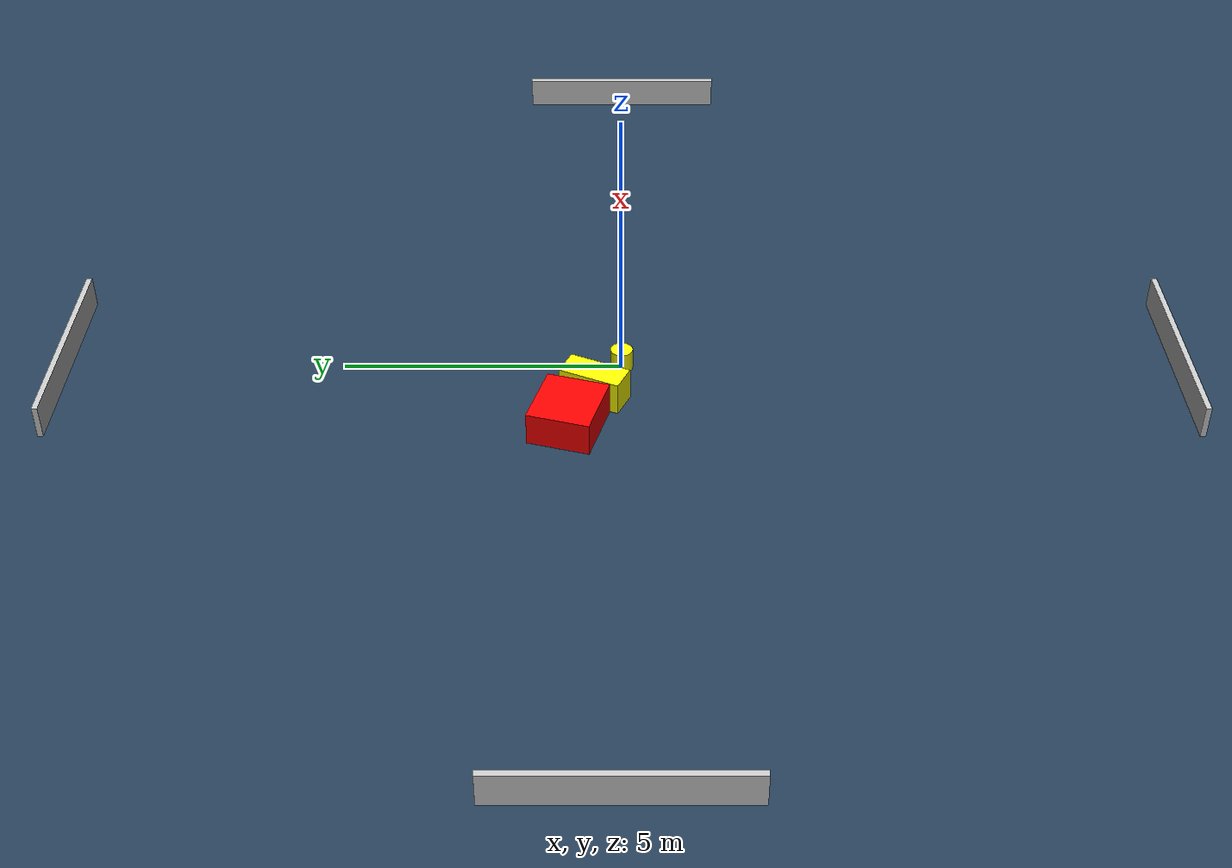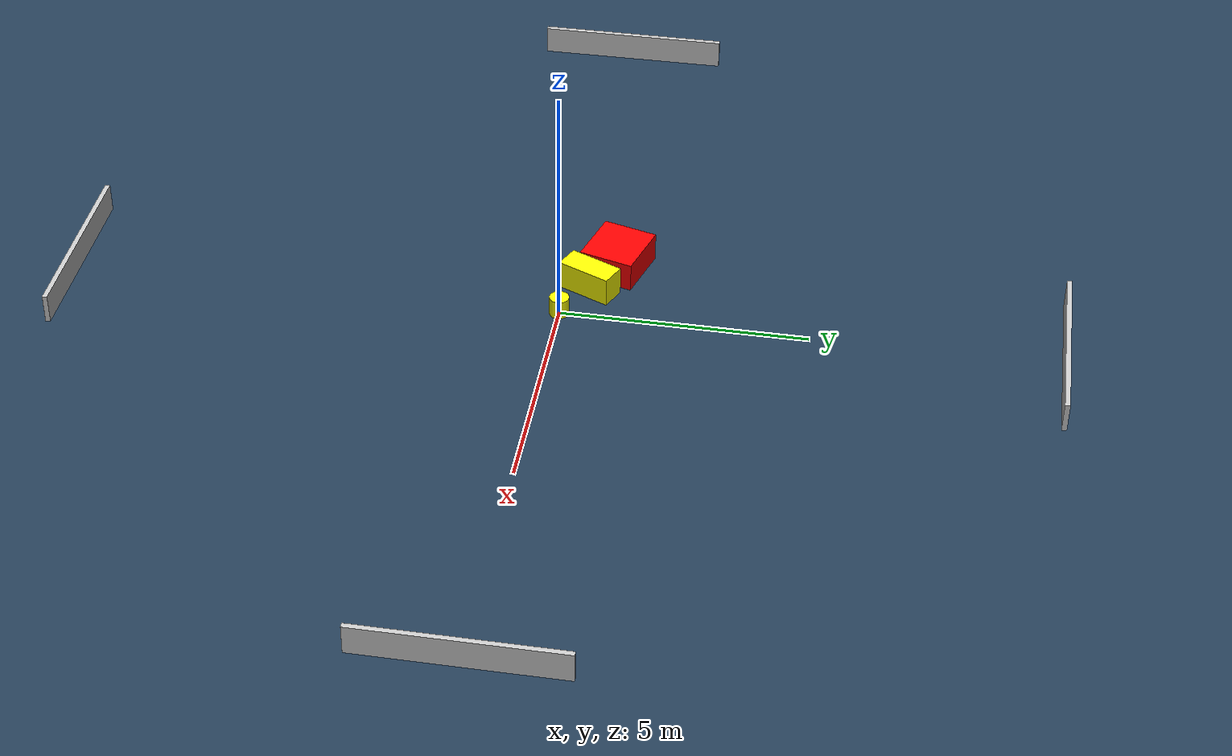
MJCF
<?xml version="1.0" ?>
<mujoco model="generated_environment">
  <option timestep="0.01" integrator="RK4" cone="elliptic"/>
  <default>
    <geom density="1"/>
  </default>
  <asset>
    <texture builtin="gradient" height="3072" name="skybox" rgb1="0.3 0.5 0.7" rgb2="0 0 0" type="skybox" width="512"/>
    <texture builtin="checker" height="300" name="groundplane" rgb1="0.2 0.3 0.4" rgb2="0.1 0.2 0.3" type="2d" width="300"/>
    <material name="groundplane" reflectance="0.2" texrepeat="5 5" texture="groundplane"/>
  </asset>
  <worldbody>
    <light dir="0 0 -1" directional="true" pos="0 0 1.5"/>
    <geom condim="3" friction="0.5 0.005 0.001" material="groundplane" name="floor" pos="0 0 0" size="0 0 0.05" type="plane"/>
    <body name="walls">
      <geom name="wall_1" condim="4" pos="-10.0 0.0 0.3" rgba="0.800000011920929 0.800000011920929 0.800000011920929 1.0" size="0.05 2.0 0.3" type="box"/>
      <geom name="wall_2" condim="4" pos="10.0 0.0 0.3" rgba="0.800000011920929 0.800000011920929 0.800000011920929 1.0" size="0.05 2.0 0.3" type="box"/>
      <geom name="wall_3" condim="4" pos="0.0 -10.0 0.3" rgba="0.800000011920929 0.800000011920929 0.800000011920929 1.0" size="2.0 0.05 0.3" type="box"/>
      <geom name="wall_4" condim="4" pos="0.0 10.0 0.3" rgba="0.800000011920929 0.800000011920929 0.800000011920929 1.0" size="2.0 0.05 0.3" type="box"/>
    </body>
    <body name="robot">
      <joint name="joint_x" type="slide" pos="0 0 0" axis="1 0 0"/>
      <joint name="joint_y" type="slide" pos="0 0 0" axis="0 1 0"/>
      <geom name="robot" type="cylinder" pos="0.0 0.0 0.2" size="0.2 0.2 0.0" mass="5.0" friction="1.0 0.005 0.0001" condim="4" rgba="1.0 1.0 0.0 1.0"/>
    </body>
    <body name="obstacle_1_movable">
      <geom name="obstacle_1_movable" condim="4" pos="-0.8888272640265034 0.4740188976738633 0.3" euler="0 0 155.3873381609479" friction="0.0 0.005 0.001" rgba="1.0 1.0 0.0 1.0" size="0.2581201921394191 0.5679581325012265 0.3" type="box" mass="0.1"/>
      <joint type="free"/>
    </body>
    <body name="obstacle_2_static">
      <geom name="obstacle_2_static" condim="4" pos="-1.7457923782319618 0.9187139861772211 0.3" euler="0 0 343.85904378124434" friction="0.0 0.005 0.001" rgba="1.0 0.0 0.0 1.0" size="0.6130379532996139 0.5640811515806926 0.3" type="box"/>
    </body>
  </worldbody>
  <actuator>
    <motor name="actuator_x" joint="joint_x" gear="1" ctrlrange="-1 1"/>
    <motor name="actuator_y" joint="joint_y" gear="1" ctrlrange="-1 1"/>
  </actuator>
</mujoco>
